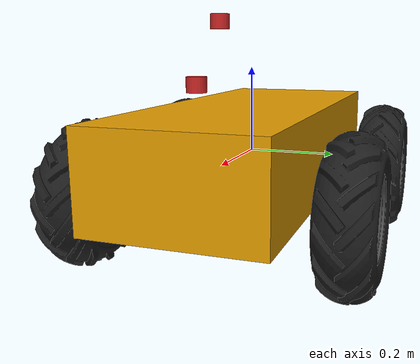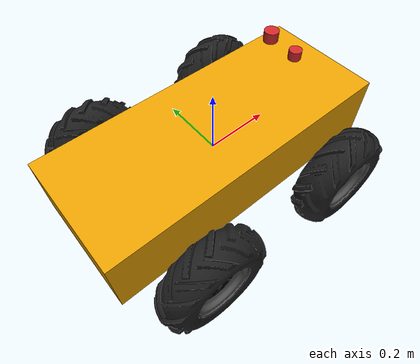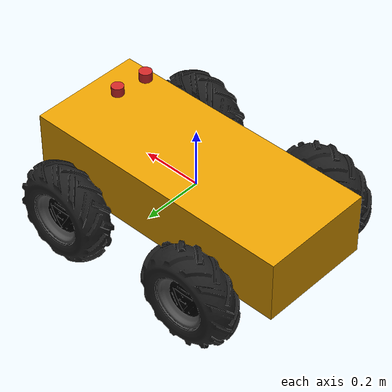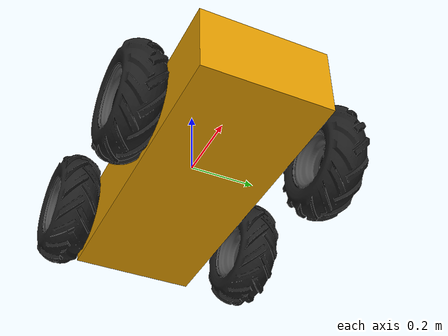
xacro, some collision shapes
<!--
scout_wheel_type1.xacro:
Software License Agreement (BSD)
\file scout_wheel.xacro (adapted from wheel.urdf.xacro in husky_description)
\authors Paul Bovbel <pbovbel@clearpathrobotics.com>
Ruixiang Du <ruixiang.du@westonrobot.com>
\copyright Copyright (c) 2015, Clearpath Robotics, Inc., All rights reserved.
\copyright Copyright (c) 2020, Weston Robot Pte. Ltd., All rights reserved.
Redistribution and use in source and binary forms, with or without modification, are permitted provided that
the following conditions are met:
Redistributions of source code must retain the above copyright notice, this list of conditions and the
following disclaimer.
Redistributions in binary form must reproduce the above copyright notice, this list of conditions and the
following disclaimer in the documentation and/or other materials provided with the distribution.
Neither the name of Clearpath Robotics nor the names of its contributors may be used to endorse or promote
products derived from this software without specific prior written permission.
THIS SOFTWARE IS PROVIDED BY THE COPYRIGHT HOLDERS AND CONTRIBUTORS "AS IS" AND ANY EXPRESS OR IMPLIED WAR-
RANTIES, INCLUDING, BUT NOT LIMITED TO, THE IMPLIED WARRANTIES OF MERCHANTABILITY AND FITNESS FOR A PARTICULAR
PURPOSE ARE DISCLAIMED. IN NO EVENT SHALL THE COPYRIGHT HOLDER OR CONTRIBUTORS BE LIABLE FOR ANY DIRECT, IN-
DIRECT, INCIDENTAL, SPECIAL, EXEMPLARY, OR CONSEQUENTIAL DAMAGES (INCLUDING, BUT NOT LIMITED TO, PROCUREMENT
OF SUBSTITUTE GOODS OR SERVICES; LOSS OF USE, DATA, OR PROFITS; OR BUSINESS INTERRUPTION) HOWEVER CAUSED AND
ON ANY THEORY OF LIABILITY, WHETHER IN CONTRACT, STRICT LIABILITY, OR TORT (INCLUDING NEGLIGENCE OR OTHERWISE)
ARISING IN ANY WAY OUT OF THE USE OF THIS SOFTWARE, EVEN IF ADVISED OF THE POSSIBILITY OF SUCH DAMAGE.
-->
<?xml version="1.0"?>

<robot name="scout_v2"
    xmlns:xacro="http://ros.org/wiki/xacro">

    <xacro:include filename="$(find scout_description)/urdf/scout_v2.xacro" />

    <link name="imu_link">
        <visual>
            <origin xyz="0.0 0.0 0.0" />
            <geometry>
                <cylinder length="0.03" radius="0.02" />
            </geometry>
            <material name="red" />
        </visual>
    </link>

    <joint name="imu_joint" type="fixed">
        <parent link="base_link" />
        <child link="imu_link" />
        <origin xyz="0.32 0.0 0.18" rpy="0 0 0" />
    </joint>

    <link name="rslidar">
        <visual>
            <origin xyz="0.0 0.0 0.0" />
            <geometry>
                <cylinder length="0.03" radius="0.02" />
            </geometry>
            <material name="red" />
        </visual>
    </link>

    <joint name="rslidar_joint" type="fixed">
        <parent link="base_link" />
        <child link="rslidar" />
        <origin xyz="0.2 0.0 0.3" rpy="0 0 0" />
    </joint>
</robot>

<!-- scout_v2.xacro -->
<robot name="scout_v2"
    xmlns:xacro="http://ros.org/wiki/xacro">

    <xacro:arg name="robot_namespace" default="/" />
    <xacro:arg name="urdf_extras" default="empty.urdf" />
    <xacro:arg name="onboard_sensors" default="false" />

    <xacro:include filename="$(find scout_description)/urdf/scout_wheel_type1.xacro" />
    <xacro:include filename="$(find scout_description)/urdf/scout_wheel_type2.xacro" />

    <!-- Variables -->
    <xacro:property name="M_PI" value="3.14159"/>

    <!-- Vehicle Geometries -->
    <xacro:property name="base_x_size" value="0.9250000" />
    <xacro:property name="base_y_size" value="0.380000" />
    <xacro:property name="base_z_size" value="0.210000" />

    <xacro:property name="wheelbase" value="0.498" />
    <xacro:property name="track" value="0.58306" />
    <xacro:property name="wheel_vertical_offset" value="-0.0702" />

    <xacro:property name="wheel_length" value="1.1653e-01" />
    <xacro:property name="wheel_radius" value="1.6459e-01" />

    <!-- Base link -->
    <link name="base_link">
        <visual>
            <origin xyz="0 0 0" rpy="0 0 0" />
            <geometry>
                <mesh filename="package://scout_description/meshes/base_link.dae" />
            </geometry>
        </visual>
        <collision>
            <origin xyz="0 0 0.008" rpy="0 0 0" />
            <geometry>
                <box size="${base_x_size} ${base_y_size} ${base_z_size}"/>
            </geometry>
        </collision>
        <collision>
            <origin xyz="0 0 ${base_z_size/6}" rpy="0 0 0" />
            <geometry>
                <box size="${base_x_size/6} ${base_y_size*1.65} ${base_z_size/3}"/>
            </geometry>
        </collision>
    </link>

    <link name="base_footprint"/>

    <joint name="base_footprint_joint" type="fixed">
        <origin xyz="0 0 ${wheel_vertical_offset - wheel_radius}" rpy="0 0 0" />
        <parent link="base_link" />
        <child link="base_footprint" />
    </joint>

    <link name="inertial_link">
        <inertial>
            <mass value="40" />
            <origin xyz="0.0 0.0 0.0" />
            <inertia ixx="2.288641" ixy="0" ixz="0" iyy="5.103976" iyz="0" izz="3.431465" />
        </inertial>
    </link>

    <joint name="inertial_joint" type="fixed">
        <origin xyz="0 0 0" rpy="0 0 0" />
        <parent link="base_link" />
        <child link="inertial_link" />
    </joint>

    <!-- For testing, hang the robot up in the air -->

    <!-- Scout wheel macros -->
    <!-- wheel labeled from 0 to 3, conter-clockwise, starting from front right wheel -->
    <!-- motor 1 and 2 (left side) are mechanically installed in a reversed direction -->
    <xacro:scout_wheel_type1 wheel_prefix="front_right">
        <origin xyz="${wheelbase/2} ${-track/2} ${wheel_vertical_offset}" rpy="3.14 0 0" />
    </xacro:scout_wheel_type1>
    <xacro:scout_wheel_type2 wheel_prefix="front_left">
        <origin xyz="${wheelbase/2} ${track/2} ${wheel_vertical_offset}" rpy="0 0 0" />
    </xacro:scout_wheel_type2>
    <xacro:scout_wheel_type1 wheel_prefix="rear_left">
        <origin xyz="${-wheelbase/2} ${track/2} ${wheel_vertical_offset}" rpy="0 0 0" />
    </xacro:scout_wheel_type1>
    <xacro:scout_wheel_type2 wheel_prefix="rear_right">
        <origin xyz="${-wheelbase/2} ${-track/2} ${wheel_vertical_offset}" rpy="3.14 0 0" />
    </xacro:scout_wheel_type2>

    <!-- Onboard sensors -->
    <xacro:if value="$(arg onboard_sensors)">
        <xacro:include filename="$(find scout_description)/urdf/onboard_sensors.urdf" />
    </xacro:if>

    <!-- Additional definitions -->
    <xacro:include filename="$(arg urdf_extras)" />

    <!-- Gazebo definitions  -->
    <xacro:include filename="$(find scout_description)/urdf/scout_v2.gazebo" />
</robot>

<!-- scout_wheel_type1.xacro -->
<robot xmlns:xacro="http://ros.org/wiki/xacro" name="scout_wheel">

    <xacro:macro name="scout_wheel_type1" params="wheel_prefix *joint_pose">
        <link name="${wheel_prefix}_wheel_link">
            <inertial>
                <mass value="2.637" />
                <origin xyz="0 0 0" />
                <inertia ixx="0.02467" ixy="0" ixz="0" iyy="0.04411" iyz="0" izz="0.02467" />
            </inertial>
            <visual>
                <origin xyz="0 0 0" rpy="0 0 0" />
                <geometry>
                    <mesh filename="package://scout_description/meshes/wheel_type1.dae" />
                </geometry>
            </visual>
            <collision>
                <origin xyz="0 0 0" rpy="${M_PI/2} 0 0" />
                <geometry>
                    <cylinder length="${wheel_length}" radius="${wheel_radius}" />
                </geometry>
            </collision>
        </link>

        <joint name="${wheel_prefix}_wheel" type="continuous">
            <parent link="base_link"/>
            <child link="${wheel_prefix}_wheel_link"/>
            <xacro:insert_block name="joint_pose"/>
            <axis xyz="0 -1 0" rpy="0 0 0" />
        </joint>
    </xacro:macro>

</robot>

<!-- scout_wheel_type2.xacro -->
<robot xmlns:xacro="http://ros.org/wiki/xacro" name="scout_wheel">

    <xacro:macro name="scout_wheel_type2" params="wheel_prefix *joint_pose">
        <link name="${wheel_prefix}_wheel_link">
            <inertial>
                <mass value="2.637" />
                <origin xyz="0 0 0" />
                <inertia ixx="0.02467" ixy="0" ixz="0" iyy="0.04411" iyz="0" izz="0.02467" />
            </inertial>
            <visual>
                <origin xyz="0 0 0" rpy="0 0 0" />
                <geometry>
                    <mesh filename="package://scout_description/meshes/wheel_type2.dae" />
                </geometry>
            </visual>
            <collision>
                <origin xyz="0 0 0" rpy="${M_PI/2} 0 0" />
                <geometry>
                    <cylinder length="${wheel_length}" radius="${wheel_radius}" />
                </geometry>
            </collision>
        </link>

        <joint name="${wheel_prefix}_wheel" type="continuous">
            <parent link="base_link"/>
            <child link="${wheel_prefix}_wheel_link"/>
            <xacro:insert_block name="joint_pose"/>
            <axis xyz="0 -1 0" rpy="0 0 0" />
        </joint>

        <!-- Gazebo definitions -->
        <gazebo reference="${wheel_prefix}_wheel_link">
            <mu1 value="1.0"/>
            <mu2 value="1.0"/>
            <kp value="10000000.0" />
            <kd value="1.0" />
            <fdir1 value="1 0 0"/>
        </gazebo>

        <transmission name="${wheel_prefix}_wheel_trans" type="SimpleTransmission">
            <type>transmission_interface/SimpleTransmission</type>
            <actuator name="${wheel_prefix}_wheel_motor">
                <mechanicalReduction>1</mechanicalReduction>
            </actuator>
            <joint name="${wheel_prefix}_wheel">
                <hardwareInterface>hardware_interface/VelocityJointInterface</hardwareInterface>
            </joint>
        </transmission>
    </xacro:macro>

</robot>
